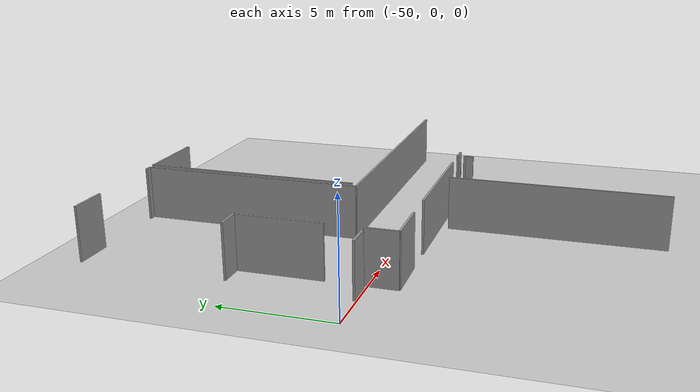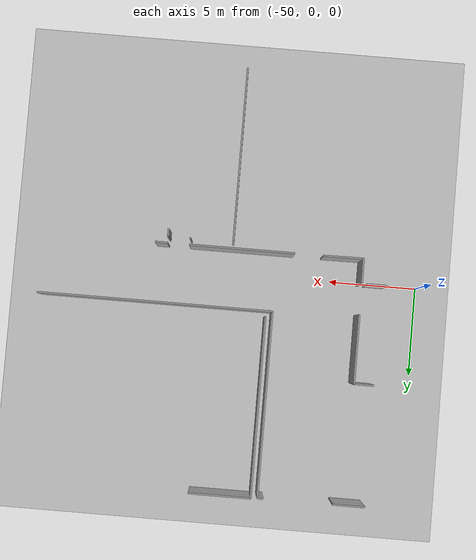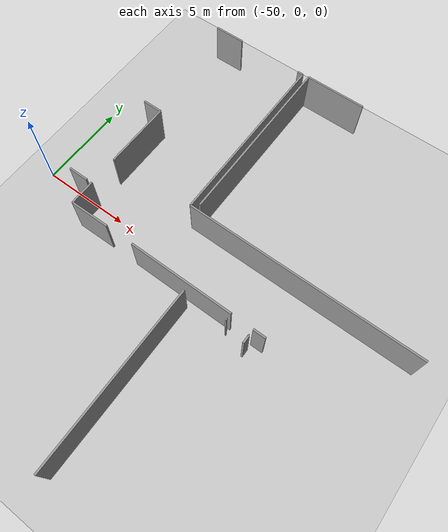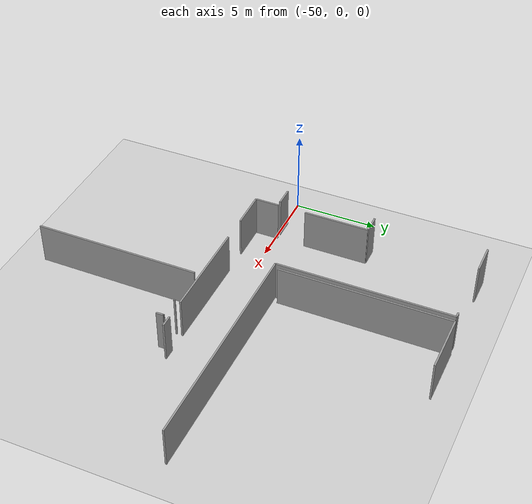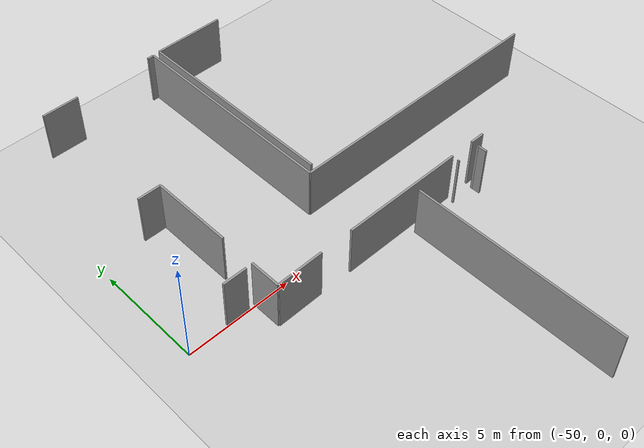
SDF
<sdf version="1.6">
 <world name="default">
  <model name="ground_plane">
   <static>1</static>
   <link name="link">
    <collision name="collision">
     <geometry><plane><normal>0 0 1</normal><size>100 100</size></plane></geometry>
     <surface><friction><ode><mu>100</mu><mu2>50</mu2></ode></friction></surface>
    </collision>
    <visual name="visual">
     <cast_shadows>0</cast_shadows>
     <geometry><plane><normal>0 0 1</normal><size>100 100</size></plane></geometry>
     <material>
      <script><uri>file://media/materials/scripts/gazebo.material</uri><name>Gazebo/Grey</name></script>
     </material>
    </visual>
   </link>
  </model>
  <model name="0510034692_Layout1">
   <static>1</static>
   <link name="Wall_11">
    <collision name="Wall_11_Collision">
     <geometry><box><size>1.13121741326 0.1 2.5</size></box></geometry>
     <pose>0.565608706631 0 1.25 0 0 0</pose>
    </collision>
    <visual name="Wall_11_Visual">
     <pose>0.565608706631 0 1.25 0 0 0</pose>
     <geometry><box><size>1.13121741326 0.1 2.5</size></box></geometry>
     <material>
      <script><uri>file://media/materials/scripts/gazebo.material</uri><name>Gazebo/Grey</name></script>
      <ambient>1 1 1 1</ambient>
     </material>
    </visual>
    <pose>9.4541352563 -12.334266815 0 0 0 3.14159265359</pose>
   </link>
   <link name="Wall_19">
    <collision name="Wall_19_Collision">
     <geometry><box><size>9.84888762564 0.1 2.5</size></box></geometry>
     <pose>4.92444381282 0 1.25 0 0 0</pose>
    </collision>
    <visual name="Wall_19_Visual">
     <pose>4.92444381282 0 1.25 0 0 0</pose>
     <geometry><box><size>9.84888762564 0.1 2.5</size></box></geometry>
     <material>
      <script><uri>file://media/materials/scripts/gazebo.material</uri><name>Gazebo/Grey</name></script>
      <ambient>1 1 1 1</ambient>
     </material>
    </visual>
    <pose>17.1103771275 -14.0962505504 0 0 0 -1.57079632679</pose>
   </link>
   <link name="Wall_23">
    <collision name="Wall_23_Collision">
     <geometry><box><size>10.0756386652 0.1 2.5</size></box></geometry>
     <pose>5.03781933259 0 1.25 0 0 0</pose>
    </collision>
    <visual name="Wall_23_Visual">
     <pose>5.03781933259 0 1.25 0 0 0</pose>
     <geometry><box><size>10.0756386652 0.1 2.5</size></box></geometry>
     <material>
      <script><uri>file://media/materials/scripts/gazebo.material</uri><name>Gazebo/Grey</name></script>
      <ambient>1 1 1 1</ambient>
     </material>
    </visual>
    <pose>14.9802877594 -10.0812217909 0 0 0 1.57079632679</pose>
   </link>
   <link name="Wall_24">
    <collision name="Wall_24_Collision">
     <geometry><box><size>3.48425114422 0.1 2.5</size></box></geometry>
     <pose>1.74212557211 0 1.25 0 0 0</pose>
    </collision>
    <visual name="Wall_24_Visual">
     <pose>1.74212557211 0 1.25 0 0 0</pose>
     <geometry><box><size>3.48425114422 0.1 2.5</size></box></geometry>
     <material>
      <script><uri>file://media/materials/scripts/gazebo.material</uri><name>Gazebo/Grey</name></script>
      <ambient>1 1 1 1</ambient>
     </material>
    </visual>
    <pose>14.9802877594 -0.00558312576371 0 0 0 0.0</pose>
   </link>
   <link name="Wall_97">
    <collision name="Wall_97_Collision">
     <geometry><box><size>0.0648403923922 0.1 2.5</size></box></geometry>
     <pose>0.0324201961961 0 1.25 0 0 0</pose>
    </collision>
    <visual name="Wall_97_Visual">
     <pose>0.0324201961961 0 1.25 0 0 0</pose>
     <geometry><box><size>0.0648403923922 0.1 2.5</size></box></geometry>
     <material>
      <script><uri>file://media/materials/scripts/gazebo.material</uri><name>Gazebo/Grey</name></script>
      <ambient>1 1 1 1</ambient>
     </material>
    </visual>
    <pose>19.4804140142 -14.0732836012 0 0 0 0.0</pose>
   </link>
   <link name="Wall_98">
    <collision name="Wall_98_Collision">
     <geometry><box><size>0.0526590270896 0.1 2.5</size></box></geometry>
     <pose>0.0263295135448 0 1.25 0 0 0</pose>
    </collision>
    <visual name="Wall_98_Visual">
     <pose>0.0263295135448 0 1.25 0 0 0</pose>
     <geometry><box><size>0.0526590270896 0.1 2.5</size></box></geometry>
     <material>
      <script><uri>file://media/materials/scripts/gazebo.material</uri><name>Gazebo/Grey</name></script>
      <ambient>1 1 1 1</ambient>
     </material>
    </visual>
    <pose>20.714919254 -14.0732836012 0 0 0 0.0</pose>
   </link>
   <link name="Wall_99">
    <collision name="Wall_99_Collision">
     <geometry><box><size>0.432565357466 0.1 2.5</size></box></geometry>
     <pose>0.216282678733 0 1.25 0 0 0</pose>
    </collision>
    <visual name="Wall_99_Visual">
     <pose>0.216282678733 0 1.25 0 0 0</pose>
     <geometry><box><size>0.432565357466 0.1 2.5</size></box></geometry>
     <material>
      <script><uri>file://media/materials/scripts/gazebo.material</uri><name>Gazebo/Grey</name></script>
      <ambient>1 1 1 1</ambient>
     </material>
    </visual>
    <pose>20.7675782811 -14.0732836012 0 0 0 -1.57079632679</pose>
   </link>
   <link name="Wall_192">
    <collision name="Wall_192_Collision">
     <geometry><box><size>1.44552201591 0.1 2.5</size></box></geometry>
     <pose>0.722761007957 0 1.25 0 0 0</pose>
    </collision>
    <visual name="Wall_192_Visual">
     <pose>0.722761007957 0 1.25 0 0 0</pose>
     <geometry><box><size>1.44552201591 0.1 2.5</size></box></geometry>
     <material>
      <script><uri>file://media/materials/scripts/gazebo.material</uri><name>Gazebo/Grey</name></script>
      <ambient>1 1 1 1</ambient>
     </material>
    </visual>
    <pose>9.7785909967 -13.7446405165 0 0 0 1.57079632679</pose>
   </link>
   <link name="Wall_193">
    <collision name="Wall_193_Collision">
     <geometry><box><size>3.87291283091 0.1 2.5</size></box></geometry>
     <pose>1.93645641546 0 1.25 0 0 0</pose>
    </collision>
    <visual name="Wall_193_Visual">
     <pose>1.93645641546 0 1.25 0 0 0</pose>
     <geometry><box><size>3.87291283091 0.1 2.5</size></box></geometry>
     <material>
      <script><uri>file://media/materials/scripts/gazebo.material</uri><name>Gazebo/Grey</name></script>
      <ambient>1 1 1 1</ambient>
     </material>
    </visual>
    <pose>9.7785909967 -10.6220236547 0 0 0 1.57079632679</pose>
   </link>
   <link name="Wall_194">
    <collision name="Wall_194_Collision">
     <geometry><box><size>1.11434114675 0.1 2.5</size></box></geometry>
     <pose>0.557170573374 0 1.25 0 0 0</pose>
    </collision>
    <visual name="Wall_194_Visual">
     <pose>0.557170573374 0 1.25 0 0 0</pose>
     <geometry><box><size>1.11434114675 0.1 2.5</size></box></geometry>
     <material>
      <script><uri>file://media/materials/scripts/gazebo.material</uri><name>Gazebo/Grey</name></script>
      <ambient>1 1 1 1</ambient>
     </material>
    </visual>
    <pose>9.7785909967 -6.74911082378 0 0 0 3.14159265359</pose>
   </link>
   <link name="Wall_197">
    <collision name="Wall_197_Collision">
     <geometry><box><size>1.78507757373 0.1 2.5</size></box></geometry>
     <pose>0.892538786863 0 1.25 0 0 0</pose>
    </collision>
    <visual name="Wall_197_Visual">
     <pose>0.892538786863 0 1.25 0 0 0</pose>
     <geometry><box><size>1.78507757373 0.1 2.5</size></box></geometry>
     <material>
      <script><uri>file://media/materials/scripts/gazebo.material</uri><name>Gazebo/Grey</name></script>
      <ambient>1 1 1 1</ambient>
     </material>
    </visual>
    <pose>8.66424984995 -0.0487254612106 0 0 0 0.0</pose>
   </link>
   <link name="Wall_198">
    <collision name="Wall_198_Collision">
     <geometry><box><size>0.32610530029 0.1 2.5</size></box></geometry>
     <pose>0.163052650145 0 1.25 0 0 0</pose>
    </collision>
    <visual name="Wall_198_Visual">
     <pose>0.163052650145 0 1.25 0 0 0</pose>
     <geometry><box><size>0.32610530029 0.1 2.5</size></box></geometry>
     <material>
      <script><uri>file://media/materials/scripts/gazebo.material</uri><name>Gazebo/Grey</name></script>
      <ambient>1 1 1 1</ambient>
     </material>
    </visual>
    <pose>14.2872188293 -0.0487254612106 0 0 0 0.0</pose>
   </link>
   <link name="Wall_199">
    <collision name="Wall_199_Collision">
     <geometry><box><size>10.3296708874 0.1 2.5</size></box></geometry>
     <pose>5.16483544371 0 1.25 0 0 0</pose>
    </collision>
    <visual name="Wall_199_Visual">
     <pose>5.16483544371 0 1.25 0 0 0</pose>
     <geometry><box><size>10.3296708874 0.1 2.5</size></box></geometry>
     <material>
      <script><uri>file://media/materials/scripts/gazebo.material</uri><name>Gazebo/Grey</name></script>
      <ambient>1 1 1 1</ambient>
     </material>
    </visual>
    <pose>14.6133241296 -0.0487254612106 0 0 0 -1.57079632679</pose>
   </link>
   <link name="Wall_200">
    <collision name="Wall_200_Collision">
     <geometry><box><size>13.1724970149 0.1 2.5</size></box></geometry>
     <pose>6.58624850747 0 1.25 0 0 0</pose>
    </collision>
    <visual name="Wall_200_Visual">
     <pose>6.58624850747 0 1.25 0 0 0</pose>
     <geometry><box><size>13.1724970149 0.1 2.5</size></box></geometry>
     <material>
      <script><uri>file://media/materials/scripts/gazebo.material</uri><name>Gazebo/Grey</name></script>
      <ambient>1 1 1 1</ambient>
     </material>
    </visual>
    <pose>14.6133241296 -10.3783963486 0 0 0 0.0</pose>
   </link>
   <link name="Wall_211">
    <collision name="Wall_211_Collision">
     <geometry><box><size>0.692561373144 0.1 2.5</size></box></geometry>
     <pose>0.346280686572 0 1.25 0 0 0</pose>
    </collision>
    <visual name="Wall_211_Visual">
     <pose>0.346280686572 0 1.25 0 0 0</pose>
     <geometry><box><size>0.692561373144 0.1 2.5</size></box></geometry>
     <material>
      <script><uri>file://media/materials/scripts/gazebo.material</uri><name>Gazebo/Grey</name></script>
      <ambient>1 1 1 1</ambient>
     </material>
    </visual>
    <pose>21.4589976513 -13.720912232 0 0 0 3.14159265359</pose>
   </link>
   <link name="Wall_212">
    <collision name="Wall_212_Collision">
     <geometry><box><size>5.93042156406 0.1 2.5</size></box></geometry>
     <pose>2.96521078203 0 1.25 0 0 0</pose>
    </collision>
    <visual name="Wall_212_Visual">
     <pose>2.96521078203 0 1.25 0 0 0</pose>
     <geometry><box><size>5.93042156406 0.1 2.5</size></box></geometry>
     <material>
      <script><uri>file://media/materials/scripts/gazebo.material</uri><name>Gazebo/Grey</name></script>
      <ambient>1 1 1 1</ambient>
     </material>
    </visual>
    <pose>19.5460157419 -13.720912232 0 0 0 3.14159265359</pose>
   </link>
   <link name="Wall_213">
    <collision name="Wall_213_Collision">
     <geometry><box><size>2.24441510074 0.1 2.5</size></box></geometry>
     <pose>1.12220755037 0 1.25 0 0 0</pose>
    </collision>
    <visual name="Wall_213_Visual">
     <pose>1.12220755037 0 1.25 0 0 0</pose>
     <geometry><box><size>2.24441510074 0.1 2.5</size></box></geometry>
     <material>
      <script><uri>file://media/materials/scripts/gazebo.material</uri><name>Gazebo/Grey</name></script>
      <ambient>1 1 1 1</ambient>
     </material>
    </visual>
    <pose>12.0228806645 -13.720912232 0 0 0 -3.13102031047</pose>
   </link>
   <pose>-56.4 12.4296829419 0 0 0 0</pose>
  </model>
 </world>
</sdf>
